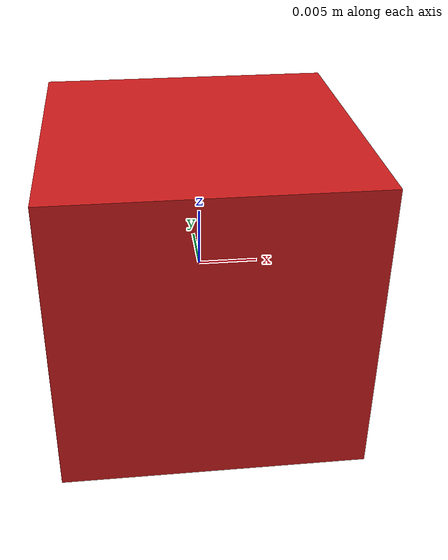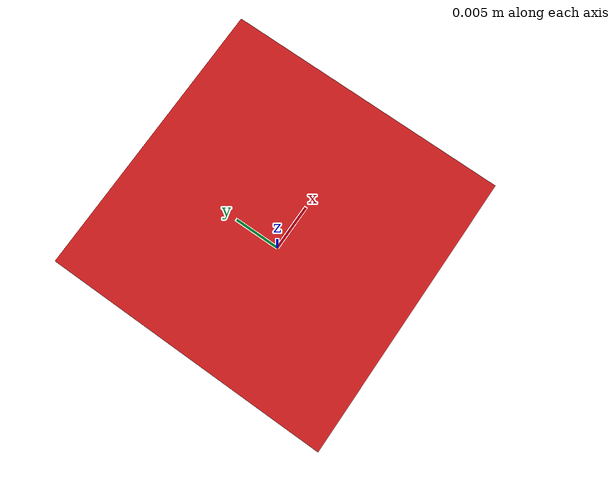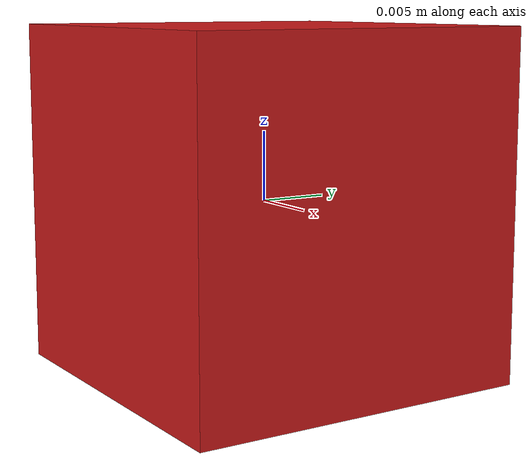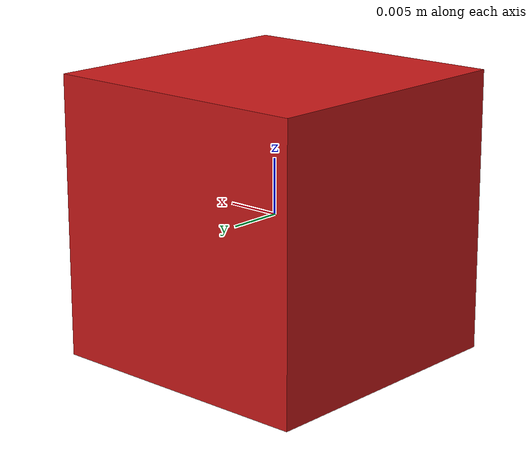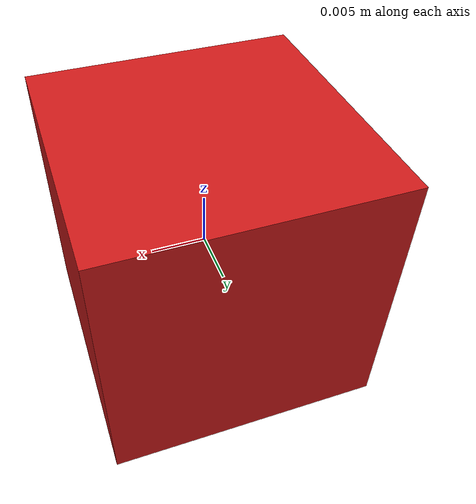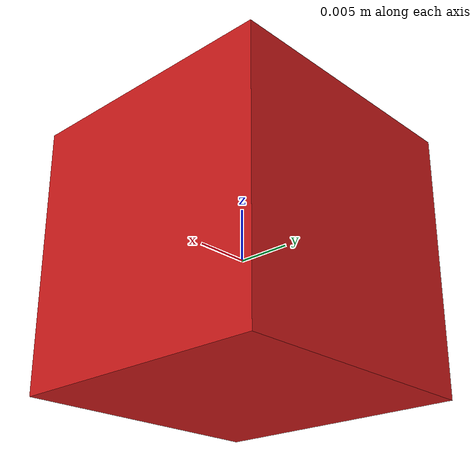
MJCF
<mujoco model="red_block">
  <compiler angle="radian"/>
  <option timestep="0.002" iterations="50" ls_iterations="20"/>

  <asset>
    <material name="red" rgba="0.8 0.1 0.1 1"/>
  </asset>

  <default>
    <geom margin="0.0005" solimp="0.99 0.999 0.01" solref="0.004 1"/>
  </default>

  <worldbody>
    <body name="red_block">
      <freejoint/>
      <inertial pos="0 0 0" mass="0.05" diaginertia="0.0001 0.0001 0.0001"/>
      <!-- High friction for secure grasping: (mu=1.5, mu_roll=0.1, mu_spin=0.05) -->
      <!-- Margin increased for better collision detection -->
      <geom name="red_block_geom" type="box" size="0.0125 0.0125 0.0125" material="red"
            friction="1.5 0.1 0.05" density="0" condim="4" conaffinity="1" margin="0.001"/>
      <site name="red_block_site" pos="0 0 0" size="0.0125"/>
    </body>
  </worldbody>
</mujoco>
